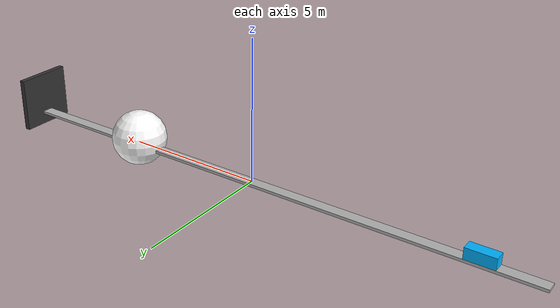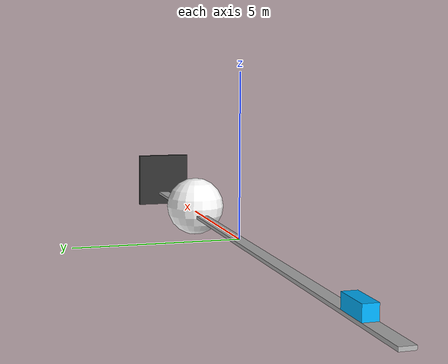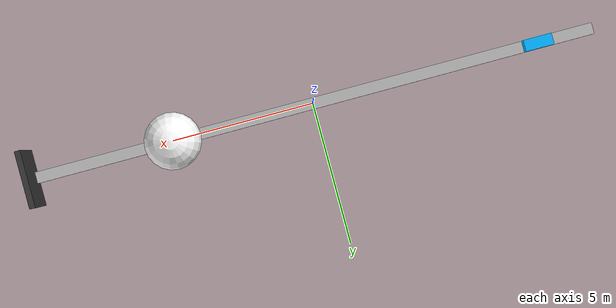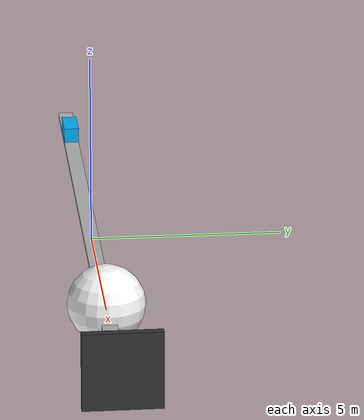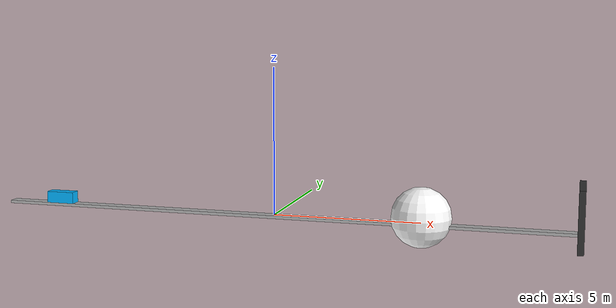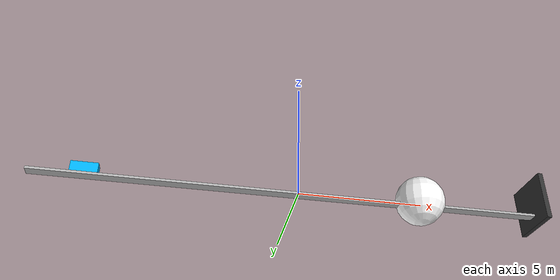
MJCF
<mujoco>
  <option gravity="0 0 -9.81" />
  <worldbody>
    <body name="object_4" pos="0 0 -0.05">
      <geom type="box" size="10 0.2 0.05" rgba="0.7 0.7 0.7 1" />
    </body>
    <body name="object_3" pos="10 0 0.5">
      <geom type="box" size="0.1 1 1" rgba="0.2 0.2 0.2 1" />
    </body>
    <body name="object_1" pos="-8 0 0.2">
      <geom type="box" size="0.5 0.2 0.2" density="1" rgba="0 0.7 1 1" solref="0.01 1" />
      <joint name="object_1_joint" type="slide" axis="1 0 0" />
    </body>
    <body name="inelastic_cart" pos="5.0 0.0 0.2"><geom type="sphere" size="1.0" rgba="1.0 1.0 1.0 1.0" /></body></worldbody>
</mujoco>
